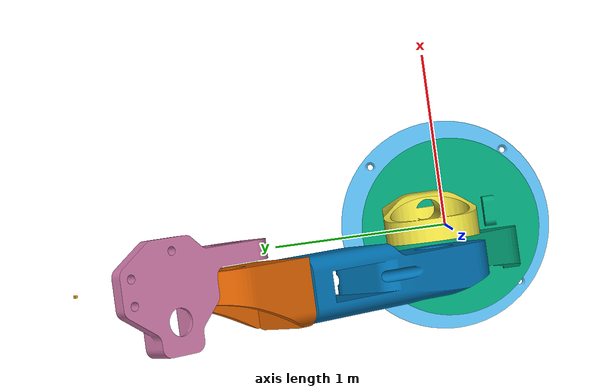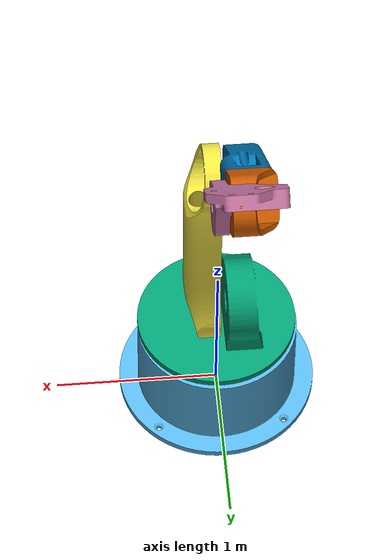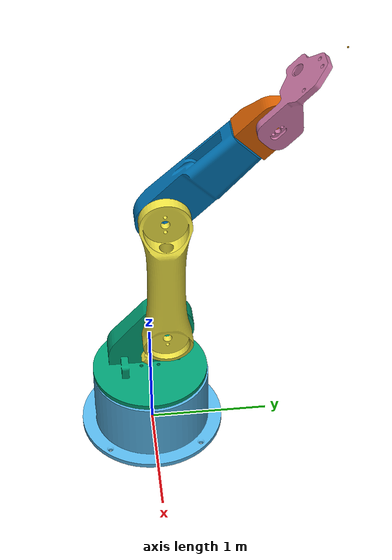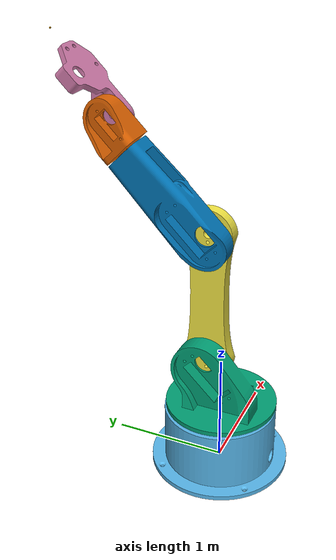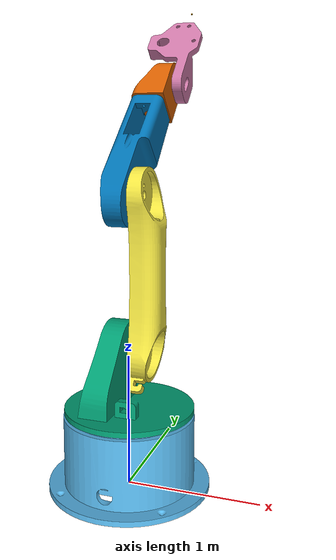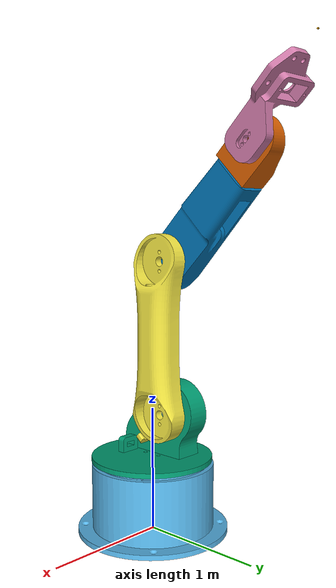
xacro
<?xml version="1.0"?>
<robot xmlns:xacro="http://www.ros.org/wiki/xacro" name="antoniobot">

    <xacro:arg name="is_sim" default="true"/>

    <xacro:include filename="$(find antoniobot_description)/urdf/antoniobot_gazebo.xacro"/>
    <xacro:include filename="$(find antoniobot_description)/urdf/antoniobot_ros2_control.xacro"/>

    <xacro:property name="scale" value="0.01 0.01 0.01"/>
    <xacro:property name="PI" value="3.14159"/>
    <xacro:property name="velocity" value="10.0"/>
    <xacro:property name="effort" value="30.0"/>

    <xacro:macro name="default_inertia" params="mass">
        <inertial>
            <mass value="${mass}"/>
            <inertia ixx="1.0" ixy="0.0" ixz="0.0" iyy="1.0" iyz="0.0" izz="1.0"/>
        </inertial>
    </xacro:macro>

    <xacro:macro name="default_transmission" params="number">
        <transmission name="transmission_${number}">
            <plugin>transmission_interface/SimpleTransmission</plugin>
            <actuator name="motor_${number}" role="actuator1"/>
            <joint name="joint_${number}" role="joint1">
                <mechanical_reduction>1.0</mechanical_reduction>
            </joint>
        </transmission>
    </xacro:macro>

    <link name="world_link"></link>

    <link name="base_link">
        <visual>
            <origin xyz="0.60625 0.60625 0.0" rpy="${PI/2} 0.0 -${PI/2}"/>
            <geometry>
                <mesh filename="package://antoniobot_description/meshes/robot/base_link.STL" scale="${scale}"/>
            </geometry>
        </visual>
        <collision>
            <origin xyz="0.60625 0.60625 0.0" rpy="${PI/2} 0.0 -${PI/2}"/>
            <geometry>
                <mesh filename="package://antoniobot_description/meshes/robot/base_link.STL" scale="${scale}"/>
            </geometry>
        </collision>
        <xacro:default_inertia mass="1.0" />
    </link>

    <joint name="virtual_joint" type="fixed">
        <parent link="world_link"/>
        <child link="base_link"/>
        <origin xyz="0.0 0.0 0.0" rpy="0.0 0.0 0.0"/>
    </joint>

    <link name="shoulderZ">
        <visual>
            <geometry>
                <mesh filename="package://antoniobot_description/meshes/robot/shoulderZ.STL" scale="${scale}"/>
            </geometry>
            <origin xyz="-0.48 0.48 0.0" rpy="${PI/2} 0.0 0.0"/>
        </visual>
        <collision>
            <geometry>
                <mesh filename="package://antoniobot_description/meshes/robot/shoulderZ.STL" scale="${scale}"/>
            </geometry>
            <origin xyz="-0.48 0.48 0.0" rpy="${PI/2} 0.0 0.0"/>
        </collision>
        <xacro:default_inertia mass="1.0" />
    </link>

    <joint name="joint_1" type="revolute">
        <parent link="base_link"/>
        <child link="shoulderZ"/>
        <origin xyz="0 0 0.585" rpy="0 0 0"/>
        <limit lower="-${PI/2}" upper="${PI/2}" velocity="${velocity}" effort="${effort}"/>
        <axis xyz="0 0 1"/>
    </joint>

    <link name="shoulderY">
        <visual>
            <geometry>
                <mesh filename="package://antoniobot_description/meshes/robot/shoulderY.STL" scale="${scale}"/>
            </geometry>
            <origin xyz="-0.03 -0.28 -0.26" rpy="${PI/2} 0 ${PI/2}"/>
        </visual>
        <collision>
            <geometry>
                <mesh filename="package://antoniobot_description/meshes/robot/shoulderY.STL" scale="${scale}"/>
            </geometry>
            <origin xyz="-0.03 -0.28 -0.26" rpy="${PI/2} 0 ${PI/2}"/>
        </collision>
        <xacro:default_inertia mass="1.0" />
    </link>

    <joint name="joint_2" type="revolute">
        <parent link="shoulderZ"/>
        <child link="shoulderY"/>
        <origin xyz="0.04 0.1392 0.4028" rpy="0 0 0"/>
        <limit lower="-${PI/2}" upper="${PI/2}" velocity="${velocity}" effort="${effort}"/>
        <axis xyz="1 0 0"/>
    </joint>

    <link name="elbow">
        <visual>
            <geometry>
                <mesh filename="package://antoniobot_description/meshes/robot/elbow.STL" scale="${scale}"/>
            </geometry>
            <origin xyz="0 -0.25 -0.2" rpy="0 -${PI/2} 0"/>
        </visual>
        <collision>
            <geometry>
                <mesh filename="package://antoniobot_description/meshes/robot/elbow.STL" scale="${scale}"/>
            </geometry>
            <origin xyz="0 -0.25 -0.2" rpy="0 -${PI/2} 0"/>
        </collision>
        <xacro:default_inertia mass="0.5" />
    </link>

    <joint name="joint_3" type="revolute">
        <parent link="shoulderY"/>
        <child link="elbow"/>
        <origin xyz="0.0 0.0 1.2" rpy="${PI/4} 0 0"/>
        <limit lower="-${PI/2}" upper="${PI/2}" velocity="${velocity}" effort="${effort}"/>
        <axis xyz="1 0 0"/>
    </joint>

    <link name="wristY">
        <visual>
            <geometry>
                <mesh filename="package://antoniobot_description/meshes/robot/wristY.STL" scale="${scale}"/>
            </geometry>
            <origin xyz="-0.115 0 -0.135" rpy="0 0 0"/>
        </visual>
        <collision>
            <geometry>
                <mesh filename="package://antoniobot_description/meshes/robot/wristY.STL" scale="${scale}"/>
            </geometry>
            <origin xyz="-0.115 0 -0.135" rpy="0 0 0"/>
        </collision>
        <xacro:default_inertia mass="0.5" />
    </link>

    <joint name="joint_4" type="revolute">
        <parent link="elbow"/>
        <child link="wristY"/>
        <origin xyz="-0.135 0.916 -0.053" rpy="0 -${PI/2} 0"/>
        <limit lower="-${PI/2}" upper="${PI/2}" velocity="${velocity}" effort="${effort}"/>
        <axis xyz="0 -1 0"/>
    </joint>

    <link name="gripper_base">
        <visual>
            <geometry>
                <mesh filename="package://antoniobot_description/meshes/robot/gripper_base.STL" scale="${scale}"/>
            </geometry>
            <origin xyz="0.14 -0.14 -0.16" rpy="0 -${PI/2} 0"/>
        </visual>
        <collision>
            <geometry>
                <mesh filename="package://antoniobot_description/meshes/robot/gripper_base.STL" scale="${scale}"/>
            </geometry>
            <origin xyz="0.14 -0.14 -0.16" rpy="0 -${PI/2} 0"/>
        </collision>
        <xacro:default_inertia mass="0.3" />
    </link>

    <joint name="joint_5" type="revolute">
        <parent link="wristY"/>
        <child link="gripper_base"/>
        <origin xyz="0.05 0.28 -0.135" rpy="0 0 -${PI/2}"/>
        <limit lower="-${PI/2}" upper="${PI/2}" velocity="${velocity}" effort="${effort}"/>
        <axis xyz="0 0 -1"/>
    </joint>

    <link name="gripper">
        <xacro:default_inertia mass="0.3"/>
    </link>

    <joint name="goal_joint" type="fixed">
        <parent link="gripper_base"/>
        <child link="gripper"/>
        <origin xyz="-0.8 0.1 0" rpy="${PI/2} 0 ${PI}"/>
    </joint>

    <!-- Virtual yaw link -->
    <link name="virtual_yaw_link">
        <visual>
        <origin xyz="0 0 0" rpy="0 0 0"/>
        <geometry>
            <box size="0.01 0.01 0.01" />
        </geometry>
        </visual>

        <inertial>
        <origin xyz="0 0 0" />
        <mass value="1.0e-03" />
        <inertia ixx="1.0e-03" ixy="0.0" ixz="0.0"
                iyy="1.0e-03" iyz="0.0"
                izz="1.0e-03" />
        </inertial>
    </link>

        <!-- Virtual yaw joint -->
    <joint name="virtual_yaw_joint" type="revolute">
        <limit lower="-3.1415" upper="3.1415" effort="54.0" velocity="3.14"/>
        <parent link="gripper"/>
        <child link="virtual_yaw_link"/>
        <axis xyz="1 0 0"/>
        <origin xyz="0.0 0.0 0.0" rpy="0 0 0"/>
        <dynamics damping="0.0" friction="0.0"/>
    </joint>

    <xacro:default_transmission number="1" />
    <xacro:default_transmission number="2" />
    <xacro:default_transmission number="3" />
    <xacro:default_transmission number="4" />
    <xacro:default_transmission number="5" />
    <transmission name="transmission_6">
        <plugin>transmission_interface/SimpleTransmission</plugin>
        <actuator name="motor_6" role="actuator1"/>
        <joint name="virtual_yaw_joint" role="joint1">
            <mechanical_reduction>1.0</mechanical_reduction>
        </joint>
    </transmission>

</robot>
